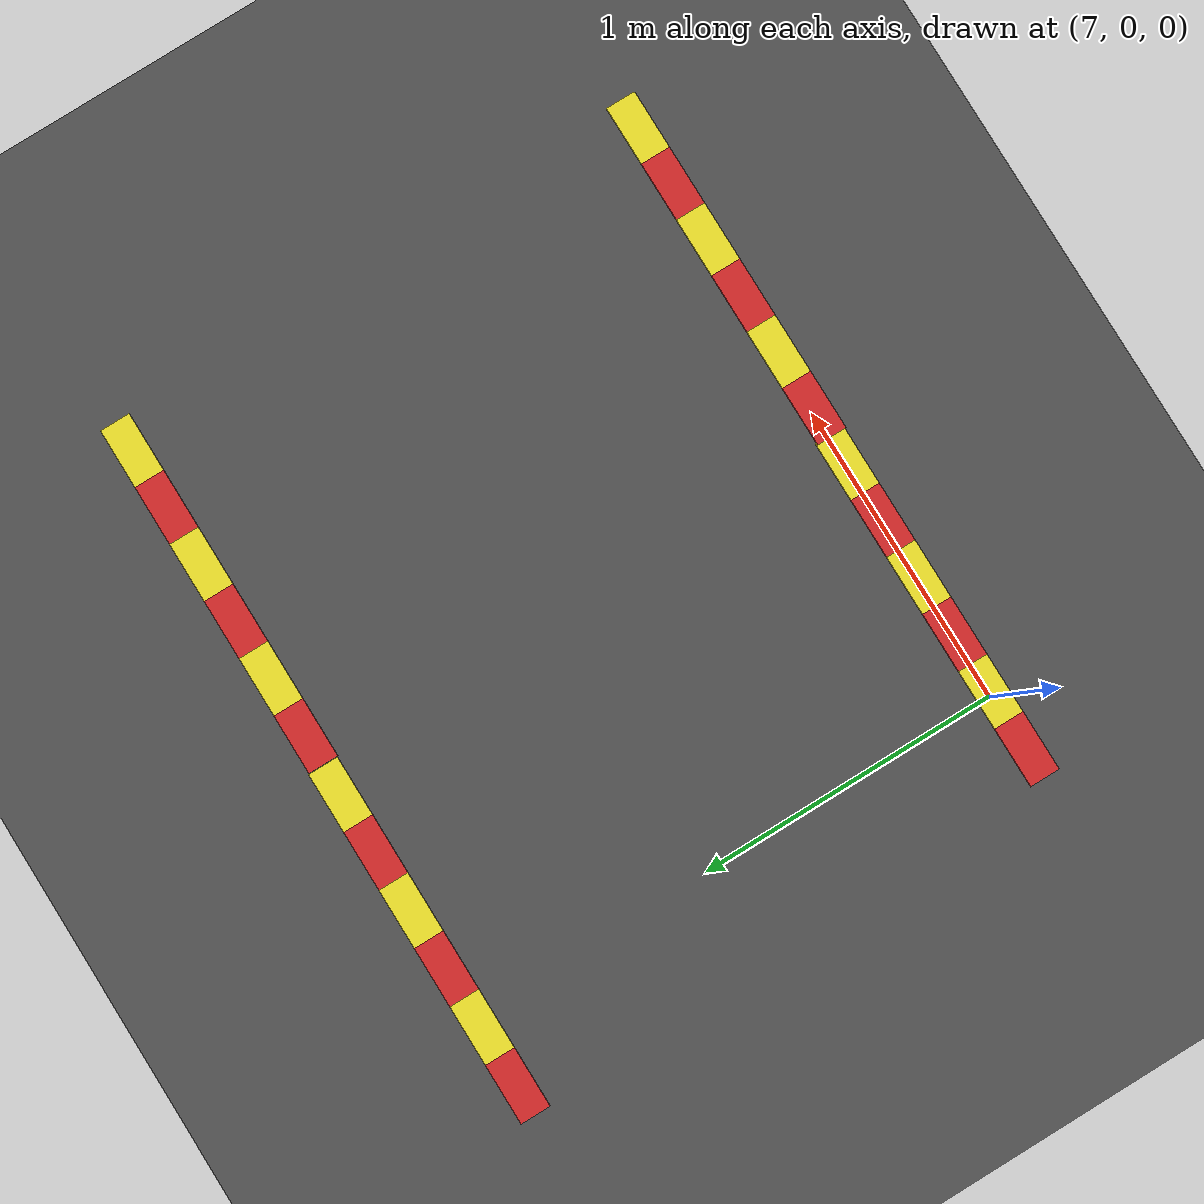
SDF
<sdf version="1.6">
 <world name="default">
  <model name="ground_plane">
   <static>1</static>
   <link name="link">
    <collision name="collision">
     <geometry><plane><normal>0 0 1</normal><size>40 40</size></plane></geometry>
     <surface><friction><ode><mu>100</mu><mu2>50</mu2></ode></friction></surface>
    </collision>
    <visual name="visual">
     <cast_shadows>0</cast_shadows>
     <geometry><plane><normal>0 0 1</normal><size>40 40</size></plane></geometry>
     <material>
      <script><uri>file://media/materials/scripts/gazebo.material</uri><name>Gazebo/Grey</name></script>
     </material>
    </visual>
    <velocity_decay><linear>0</linear><angular>0</angular></velocity_decay>
   </link>
  </model>
  <model name="asphalt_plane">
   <static>1</static>
   <link name="link">
    <collision name="collision"><geometry><box><size>40 40 0.1</size></box></geometry></collision>
    <visual name="visual">
     <cast_shadows>0</cast_shadows>
     <geometry><box><size>40 40 0.1</size></box></geometry>
     <material>
      <script>
       <uri>model://asphalt_plane/materials/scripts</uri>
       <uri>model://asphalt_plane/materials/textures</uri>
       <name>vrc/asphalt</name>
      </script>
     </material>
    </visual>
    <velocity_decay><linear>0</linear><angular>0</angular></velocity_decay>
   </link>
   <pose>0.433796 -0.497378 0 0 -0 0</pose>
  </model>
  <model name="DashLine_clone_clone_clone_2">
   <link name="link">
    <inertial>
     <mass>1</mass>
     <inertia>
      <ixx>0.166667</ixx>
      <ixy>0</ixy>
      <ixz>0</ixz>
      <iyy>0.166667</iyy>
      <iyz>0</iyz>
      <izz>0.166667</izz>
     </inertia>
    </inertial>
    <gravity>0</gravity>
    <visual name="ModelPreview_3::link::visual_3">
     <geometry><box><size>0.2 0.1 0.01</size></box></geometry>
     <material>
      <script><name>Gazebo/Yellow</name><uri>file://media/materials/scripts/gazebo.material</uri></script>
      <shader type="vertex"><normal_map>__default__</normal_map></shader>
      <ambient>0.988 0.914 0.31 1</ambient>
      <diffuse>0.7 0.7 0.7 1</diffuse>
      <specular>0.01 0.01 0.01 1</specular>
      <emissive>0 0 0 1</emissive>
     </material>
     <pose>0.2 0 0 0 -0 0</pose>
    </visual>
    <visual name="ModelPreview_6::link::visual_5">
     <geometry><box><size>0.2 0.1 0.01</size></box></geometry>
     <material>
      <script><name>Gazebo/Yellow</name><uri>file://media/materials/scripts/gazebo.material</uri></script>
      <shader type="vertex"><normal_map>__default__</normal_map></shader>
      <ambient>0.988 0.914 0.31 1</ambient>
      <diffuse>0.7 0.7 0.7 1</diffuse>
      <specular>0.01 0.01 0.01 1</specular>
      <emissive>0 0 0 1</emissive>
     </material>
     <pose>0.6 0 0 0 -0 0</pose>
    </visual>
    <visual name="ModelPreview_3::link::visual_4">
     <geometry><box><size>0.2 0.1 0.01</size></box></geometry>
     <material>
      <script><name>Gazebo/Red</name><uri>file://media/materials/scripts/gazebo.material</uri></script>
      <shader type="vertex"><normal_map>__default__</normal_map></shader>
      <ambient>0.937 0.161 0.161 1</ambient>
      <diffuse>0.7 0.7 0.7 1</diffuse>
      <specular>0.01 0.01 0.01 1</specular>
      <emissive>0 0 0 1</emissive>
     </material>
     <pose>0.4 0 0 0 -0 0</pose>
    </visual>
    <visual name="ModelPreview_3::link::visual_2">
     <geometry><box><size>0.2 0.1 0.01</size></box></geometry>
     <material>
      <script><name>Gazebo/Red</name><uri>file://media/materials/scripts/gazebo.material</uri></script>
      <shader type="vertex"><normal_map>__default__</normal_map></shader>
      <ambient>0.937 0.161 0.161 1</ambient>
      <diffuse>0.7 0.7 0.7 1</diffuse>
      <specular>0.01 0.01 0.01 1</specular>
      <emissive>0 0 0 1</emissive>
     </material>
    </visual>
    <visual name="visual">
     <geometry><box><size>0.2 0.1 0.01</size></box></geometry>
     <material>
      <script><name>Gazebo/Red</name><uri>file://media/materials/scripts/gazebo.material</uri></script>
      <shader type="vertex"><normal_map>__default__</normal_map></shader>
      <ambient>0.8 0 0 1</ambient>
      <diffuse>0.7 0.7 0.7 1</diffuse>
      <specular>0.01 0.01 0.01 1</specular>
      <emissive>0 0 0 1</emissive>
     </material>
     <pose>-0.4 0 0 0 -0 0</pose>
    </visual>
    <visual name="ModelPreview_3::link::visual_1">
     <geometry><box><size>0.2 0.1 0.01</size></box></geometry>
     <material>
      <script><name>Gazebo/Yellow</name><uri>file://media/materials/scripts/gazebo.material</uri></script>
      <shader type="vertex"><normal_map>__default__</normal_map></shader>
      <ambient>0.988 0.914 0.31 1</ambient>
      <diffuse>0.7 0.7 0.7 1</diffuse>
      <specular>0.01 0.01 0.01 1</specular>
      <emissive>0 0 0 1</emissive>
     </material>
     <pose>-0.2 0 0 0 -0 0</pose>
    </visual>
   </link>
   <static>0</static>
   <pose>7.21478 -0.00075 0.05 0 -0 0</pose>
  </model>
  <model name="DashLine_clone_clone_clone_3">
   <link name="link">
    <inertial>
     <mass>1</mass>
     <inertia>
      <ixx>0.166667</ixx>
      <ixy>0</ixy>
      <ixz>0</ixz>
      <iyy>0.166667</iyy>
      <iyz>0</iyz>
      <izz>0.166667</izz>
     </inertia>
    </inertial>
    <gravity>0</gravity>
    <visual name="ModelPreview_3::link::visual_3">
     <geometry><box><size>0.2 0.1 0.01</size></box></geometry>
     <material>
      <script><name>Gazebo/Yellow</name><uri>file://media/materials/scripts/gazebo.material</uri></script>
      <shader type="vertex"><normal_map>__default__</normal_map></shader>
      <ambient>0.988 0.914 0.31 1</ambient>
      <diffuse>0.7 0.7 0.7 1</diffuse>
      <specular>0.01 0.01 0.01 1</specular>
      <emissive>0 0 0 1</emissive>
     </material>
     <pose>0.2 0 0 0 -0 0</pose>
    </visual>
    <visual name="ModelPreview_6::link::visual_5">
     <geometry><box><size>0.2 0.1 0.01</size></box></geometry>
     <material>
      <script><name>Gazebo/Yellow</name><uri>file://media/materials/scripts/gazebo.material</uri></script>
      <shader type="vertex"><normal_map>__default__</normal_map></shader>
      <ambient>0.988 0.914 0.31 1</ambient>
      <diffuse>0.7 0.7 0.7 1</diffuse>
      <specular>0.01 0.01 0.01 1</specular>
      <emissive>0 0 0 1</emissive>
     </material>
     <pose>0.6 0 0 0 -0 0</pose>
    </visual>
    <visual name="ModelPreview_3::link::visual_4">
     <geometry><box><size>0.2 0.1 0.01</size></box></geometry>
     <material>
      <script><name>Gazebo/Red</name><uri>file://media/materials/scripts/gazebo.material</uri></script>
      <shader type="vertex"><normal_map>__default__</normal_map></shader>
      <ambient>0.937 0.161 0.161 1</ambient>
      <diffuse>0.7 0.7 0.7 1</diffuse>
      <specular>0.01 0.01 0.01 1</specular>
      <emissive>0 0 0 1</emissive>
     </material>
     <pose>0.4 0 0 0 -0 0</pose>
    </visual>
    <visual name="ModelPreview_3::link::visual_2">
     <geometry><box><size>0.2 0.1 0.01</size></box></geometry>
     <material>
      <script><name>Gazebo/Red</name><uri>file://media/materials/scripts/gazebo.material</uri></script>
      <shader type="vertex"><normal_map>__default__</normal_map></shader>
      <ambient>0.937 0.161 0.161 1</ambient>
      <diffuse>0.7 0.7 0.7 1</diffuse>
      <specular>0.01 0.01 0.01 1</specular>
      <emissive>0 0 0 1</emissive>
     </material>
    </visual>
    <visual name="visual">
     <geometry><box><size>0.2 0.1 0.01</size></box></geometry>
     <material>
      <script><name>Gazebo/Red</name><uri>file://media/materials/scripts/gazebo.material</uri></script>
      <shader type="vertex"><normal_map>__default__</normal_map></shader>
      <ambient>0.8 0 0 1</ambient>
      <diffuse>0.7 0.7 0.7 1</diffuse>
      <specular>0.01 0.01 0.01 1</specular>
      <emissive>0 0 0 1</emissive>
     </material>
     <pose>-0.4 0 0 0 -0 0</pose>
    </visual>
    <visual name="ModelPreview_3::link::visual_1">
     <geometry><box><size>0.2 0.1 0.01</size></box></geometry>
     <material>
      <script><name>Gazebo/Yellow</name><uri>file://media/materials/scripts/gazebo.material</uri></script>
      <shader type="vertex"><normal_map>__default__</normal_map></shader>
      <ambient>0.988 0.914 0.31 1</ambient>
      <diffuse>0.7 0.7 0.7 1</diffuse>
      <specular>0.01 0.01 0.01 1</specular>
      <emissive>0 0 0 1</emissive>
     </material>
     <pose>-0.2 0 0 0 -0 0</pose>
    </visual>
   </link>
   <static>0</static>
   <pose>8.40762 -0.005132 0.05 0 -0 0</pose>
  </model>
  <model name="DashLine_clone_clone_clone_4">
   <link name="link">
    <inertial>
     <mass>1</mass>
     <inertia>
      <ixx>0.166667</ixx>
      <ixy>0</ixy>
      <ixz>0</ixz>
      <iyy>0.166667</iyy>
      <iyz>0</iyz>
      <izz>0.166667</izz>
     </inertia>
    </inertial>
    <gravity>0</gravity>
    <visual name="ModelPreview_3::link::visual_3">
     <geometry><box><size>0.2 0.1 0.01</size></box></geometry>
     <material>
      <script><name>Gazebo/Yellow</name><uri>file://media/materials/scripts/gazebo.material</uri></script>
      <shader type="vertex"><normal_map>__default__</normal_map></shader>
      <ambient>0.988 0.914 0.31 1</ambient>
      <diffuse>0.7 0.7 0.7 1</diffuse>
      <specular>0.01 0.01 0.01 1</specular>
      <emissive>0 0 0 1</emissive>
     </material>
     <pose>0.2 0 0 0 -0 0</pose>
    </visual>
    <visual name="ModelPreview_6::link::visual_5">
     <geometry><box><size>0.2 0.1 0.01</size></box></geometry>
     <material>
      <script><name>Gazebo/Yellow</name><uri>file://media/materials/scripts/gazebo.material</uri></script>
      <shader type="vertex"><normal_map>__default__</normal_map></shader>
      <ambient>0.988 0.914 0.31 1</ambient>
      <diffuse>0.7 0.7 0.7 1</diffuse>
      <specular>0.01 0.01 0.01 1</specular>
      <emissive>0 0 0 1</emissive>
     </material>
     <pose>0.6 0 0 0 -0 0</pose>
    </visual>
    <visual name="ModelPreview_3::link::visual_4">
     <geometry><box><size>0.2 0.1 0.01</size></box></geometry>
     <material>
      <script><name>Gazebo/Red</name><uri>file://media/materials/scripts/gazebo.material</uri></script>
      <shader type="vertex"><normal_map>__default__</normal_map></shader>
      <ambient>0.937 0.161 0.161 1</ambient>
      <diffuse>0.7 0.7 0.7 1</diffuse>
      <specular>0.01 0.01 0.01 1</specular>
      <emissive>0 0 0 1</emissive>
     </material>
     <pose>0.4 0 0 0 -0 0</pose>
    </visual>
    <visual name="ModelPreview_3::link::visual_2">
     <geometry><box><size>0.2 0.1 0.01</size></box></geometry>
     <material>
      <script><name>Gazebo/Red</name><uri>file://media/materials/scripts/gazebo.material</uri></script>
      <shader type="vertex"><normal_map>__default__</normal_map></shader>
      <ambient>0.937 0.161 0.161 1</ambient>
      <diffuse>0.7 0.7 0.7 1</diffuse>
      <specular>0.01 0.01 0.01 1</specular>
      <emissive>0 0 0 1</emissive>
     </material>
    </visual>
    <visual name="visual">
     <geometry><box><size>0.2 0.1 0.01</size></box></geometry>
     <material>
      <script><name>Gazebo/Red</name><uri>file://media/materials/scripts/gazebo.material</uri></script>
      <shader type="vertex"><normal_map>__default__</normal_map></shader>
      <ambient>0.8 0 0 1</ambient>
      <diffuse>0.7 0.7 0.7 1</diffuse>
      <specular>0.01 0.01 0.01 1</specular>
      <emissive>0 0 0 1</emissive>
     </material>
     <pose>-0.4 0 0 0 -0 0</pose>
    </visual>
    <visual name="ModelPreview_3::link::visual_1">
     <geometry><box><size>0.2 0.1 0.01</size></box></geometry>
     <material>
      <script><name>Gazebo/Yellow</name><uri>file://media/materials/scripts/gazebo.material</uri></script>
      <shader type="vertex"><normal_map>__default__</normal_map></shader>
      <ambient>0.988 0.914 0.31 1</ambient>
      <diffuse>0.7 0.7 0.7 1</diffuse>
      <specular>0.01 0.01 0.01 1</specular>
      <emissive>0 0 0 1</emissive>
     </material>
     <pose>-0.2 0 0 0 -0 0</pose>
    </visual>
   </link>
   <static>0</static>
   <pose>8.36917 1.7952 0.05 0 -0 0</pose>
  </model>
  <model name="DashLine_clone_clone_clone_5">
   <link name="link">
    <inertial>
     <mass>1</mass>
     <inertia>
      <ixx>0.166667</ixx>
      <ixy>0</ixy>
      <ixz>0</ixz>
      <iyy>0.166667</iyy>
      <iyz>0</iyz>
      <izz>0.166667</izz>
     </inertia>
    </inertial>
    <gravity>0</gravity>
    <visual name="ModelPreview_3::link::visual_3">
     <geometry><box><size>0.2 0.1 0.01</size></box></geometry>
     <material>
      <script><name>Gazebo/Yellow</name><uri>file://media/materials/scripts/gazebo.material</uri></script>
      <shader type="vertex"><normal_map>__default__</normal_map></shader>
      <ambient>0.988 0.914 0.31 1</ambient>
      <diffuse>0.7 0.7 0.7 1</diffuse>
      <specular>0.01 0.01 0.01 1</specular>
      <emissive>0 0 0 1</emissive>
     </material>
     <pose>0.2 0 0 0 -0 0</pose>
    </visual>
    <visual name="ModelPreview_6::link::visual_5">
     <geometry><box><size>0.2 0.1 0.01</size></box></geometry>
     <material>
      <script><name>Gazebo/Yellow</name><uri>file://media/materials/scripts/gazebo.material</uri></script>
      <shader type="vertex"><normal_map>__default__</normal_map></shader>
      <ambient>0.988 0.914 0.31 1</ambient>
      <diffuse>0.7 0.7 0.7 1</diffuse>
      <specular>0.01 0.01 0.01 1</specular>
      <emissive>0 0 0 1</emissive>
     </material>
     <pose>0.6 0 0 0 -0 0</pose>
    </visual>
    <visual name="ModelPreview_3::link::visual_4">
     <geometry><box><size>0.2 0.1 0.01</size></box></geometry>
     <material>
      <script><name>Gazebo/Red</name><uri>file://media/materials/scripts/gazebo.material</uri></script>
      <shader type="vertex"><normal_map>__default__</normal_map></shader>
      <ambient>0.937 0.161 0.161 1</ambient>
      <diffuse>0.7 0.7 0.7 1</diffuse>
      <specular>0.01 0.01 0.01 1</specular>
      <emissive>0 0 0 1</emissive>
     </material>
     <pose>0.4 0 0 0 -0 0</pose>
    </visual>
    <visual name="ModelPreview_3::link::visual_2">
     <geometry><box><size>0.2 0.1 0.01</size></box></geometry>
     <material>
      <script><name>Gazebo/Red</name><uri>file://media/materials/scripts/gazebo.material</uri></script>
      <shader type="vertex"><normal_map>__default__</normal_map></shader>
      <ambient>0.937 0.161 0.161 1</ambient>
      <diffuse>0.7 0.7 0.7 1</diffuse>
      <specular>0.01 0.01 0.01 1</specular>
      <emissive>0 0 0 1</emissive>
     </material>
    </visual>
    <visual name="visual">
     <geometry><box><size>0.2 0.1 0.01</size></box></geometry>
     <material>
      <script><name>Gazebo/Red</name><uri>file://media/materials/scripts/gazebo.material</uri></script>
      <shader type="vertex"><normal_map>__default__</normal_map></shader>
      <ambient>0.8 0 0 1</ambient>
      <diffuse>0.7 0.7 0.7 1</diffuse>
      <specular>0.01 0.01 0.01 1</specular>
      <emissive>0 0 0 1</emissive>
     </material>
     <pose>-0.4 0 0 0 -0 0</pose>
    </visual>
    <visual name="ModelPreview_3::link::visual_1">
     <geometry><box><size>0.2 0.1 0.01</size></box></geometry>
     <material>
      <script><name>Gazebo/Yellow</name><uri>file://media/materials/scripts/gazebo.material</uri></script>
      <shader type="vertex"><normal_map>__default__</normal_map></shader>
      <ambient>0.988 0.914 0.31 1</ambient>
      <diffuse>0.7 0.7 0.7 1</diffuse>
      <specular>0.01 0.01 0.01 1</specular>
      <emissive>0 0 0 1</emissive>
     </material>
     <pose>-0.2 0 0 0 -0 0</pose>
    </visual>
   </link>
   <static>0</static>
   <pose>7.16738 1.79779 0.05 0 -0 0</pose>
  </model>
 </world>
</sdf>
